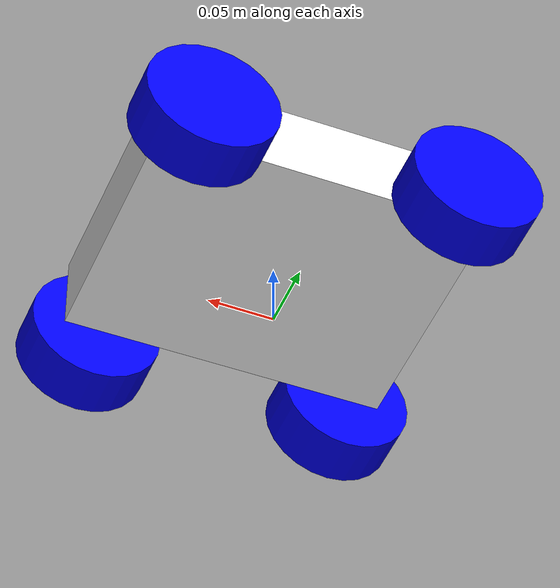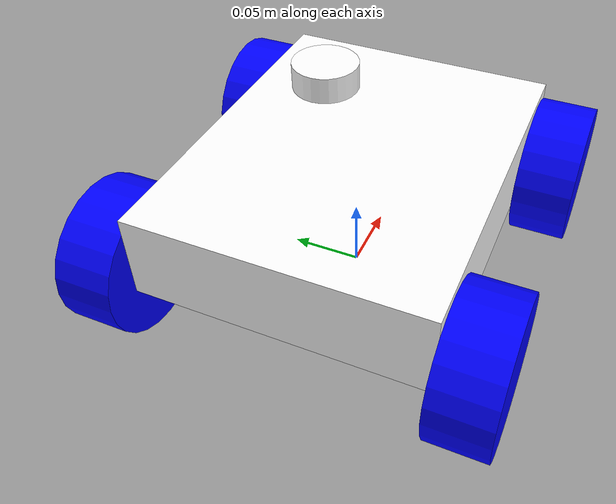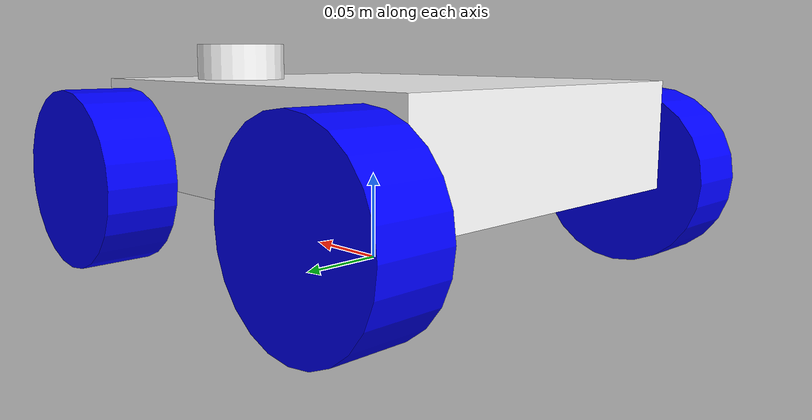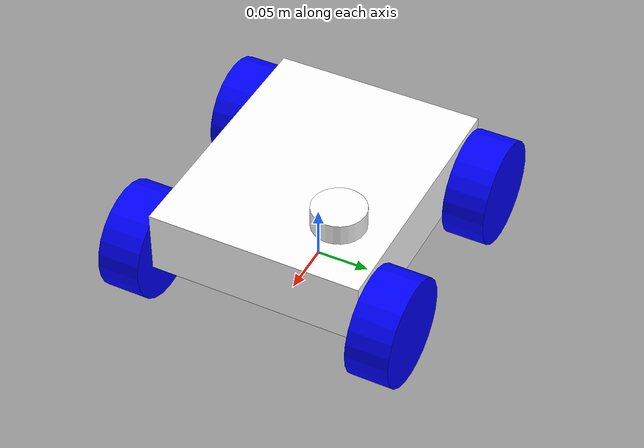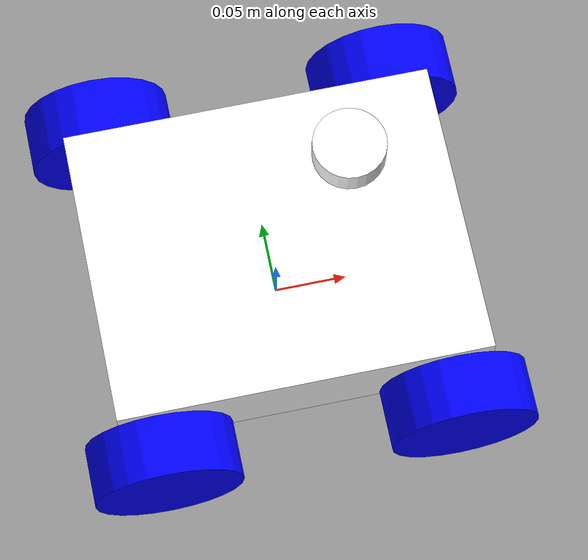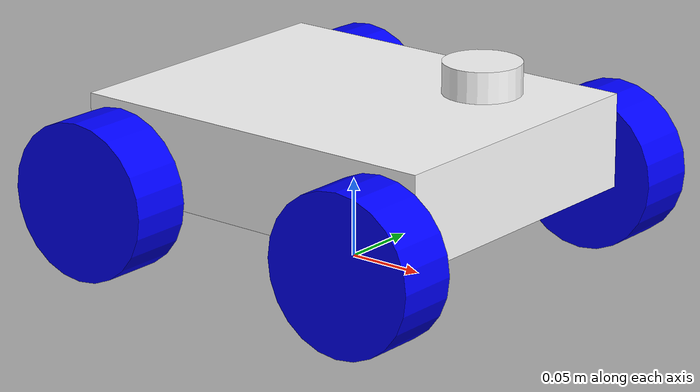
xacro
<?xml version="1.0"?>
<robot xmlns:xacro="http://www.ros.org/wiki/xacro" >
    <xacro:include filename="inertial_macros.xacro"/>

    <material name="white">
        <color rgba ="1 1 1 1"/>
    </material>

    <material name="blue">
        <color rgba ="0 0 1 1"/>
    </material>

    <link name="base_link">
    </link>

    <joint name="chassis_joint" type="fixed">
        <parent link="base_link"/>
        <child link="chassis"/>
        <origin xyz="0 0 0.075"/>
    </joint>

    <link name="chassis">
        <visual>
            <geometry>
                <box size="0.25 0.20 0.06"/>
            </geometry>
            <material name="white"/>
            <origin xyz="0 0 0"/>
        </visual>
        <visual>
            <geometry>
                <cylinder radius="0.025" length="0.02"/>
            </geometry>
            <material name="white"/>
            <origin xyz="0.06 0.05 0.04"/>
        </visual>
        <collision>
            <geometry>
                <box size="0.25 0.20 0.06"/>
            </geometry>

            <origin xyz="0 0 0"/>
        </collision>
        <collision>
            <geometry>
                <cylinder radius="0.025" length="0.02"/>
            </geometry>
            <origin xyz="0.06 0.05 0.04"/>
        </collision>
        <xacro:inertial_box mass="0.5" x="0" y="0" z="0">
            <origin xyz = "0 0 0" rpy="0 0 0"/>
        </xacro:inertial_box>
    </link>
    <!--0.0508 was the z value before for visual & collision (for ref)-->
    <gazebo reference="chassis">
        <material> Gazebo/White</material>
    </gazebo>

    <!-- wheel links-->
    <!-- LF-->
    <joint name="LF_wheel_joint" type="continuous">
        <parent link="chassis"/>
        <child link="LF_wheel"/>
        <origin xyz="0.1 0.12 -0.025" rpy="-${pi/2} 0 0"/>
        <axis xyz="0 0 1"/>
    </joint>

    <link name="LF_wheel">
        <visual>
            <geometry>
                <cylinder radius="0.05" length="0.04"/>
            </geometry>
            <material name="blue"/>
        </visual>
        <collision>
            <geometry>
                <sphere radius="0.05"/>
            </geometry>
        </collision>
        <xacro:inertial_cylinder mass="0.1" length="0.04" radius="0.05">
            <origin xyz = "0 0 0" rpy="0 0 0"/>
        </xacro:inertial_cylinder>

    </link>
    <gazebo reference="LF_wheel">
        <material> Gazebo/Blue</material>
    </gazebo>
    <!-- LB-->
    <joint name="LB_wheel_joint" type="continuous">
        <parent link="chassis"/>
        <child link="LB_wheel"/>
        <origin xyz="-0.1 0.12 -0.025" rpy="-${pi/2} 0 0"/>
        <axis xyz="0 0 1"/>
    </joint>

    <link name="LB_wheel">
        <visual>
            <geometry>
                <cylinder radius="0.05" length="0.04"/>
            </geometry>
            <material name="blue"/>
        </visual>
        <collision>
            <geometry>
                <sphere radius="0.05"/>
            </geometry>
        </collision>
        <xacro:inertial_cylinder mass="0.1" length="0.04" radius="0.05">
            <origin xyz = "0 0 0" rpy="0 0 0"/>
        </xacro:inertial_cylinder>
    </link>
    <gazebo reference="LB_wheel">
        <material> Gazebo/Blue</material>
    </gazebo>

    <!-- RF-->
    <joint name="RF_wheel_joint" type="continuous">
        <parent link="chassis"/>
        <child link="RF_wheel"/>
        <origin xyz="0.1 -0.12 -0.025" rpy="${pi/2} 0 0"/>
        <axis xyz="0 0 -1"/>
    </joint>

    <link name="RF_wheel">
        <visual>
            <geometry>
                <cylinder radius="0.05" length="0.04"/>
            </geometry>
            <material name="blue"/>
        </visual>
        <collision>
            <geometry>
                <sphere radius="0.05"/>
            </geometry>
        </collision>
        <xacro:inertial_cylinder mass="0.1" length="0.04" radius="0.05">
            <origin xyz = "0 0 0" rpy="0 0 0"/>
        </xacro:inertial_cylinder>
    </link>
    <gazebo reference="RF_wheel">
        <material> Gazebo/Blue</material>
    </gazebo>

    <!-- RB-->
    <joint name="RB_wheel_joint" type="continuous">
        <parent link="chassis"/>
        <child link="RB_wheel"/>
        <origin xyz="-0.1 -0.12 -0.025" rpy="${pi/2} 0 0"/>
        <axis xyz="0 0 -1"/>
    </joint>

    <link name="RB_wheel">
        <visual>
            <geometry>
                <cylinder radius="0.05" length="0.04"/>
            </geometry>
            <material name="blue"/>
        </visual>
        <collision>
            <geometry>
                <sphere radius="0.05"/>
            </geometry>
        </collision>
        <xacro:inertial_cylinder mass="0.1" length="0.04" radius="0.05">
            <origin xyz = "0 0 0" rpy="0 0 0"/>
        </xacro:inertial_cylinder>
    </link>
    <gazebo reference="RB_wheel">
        <material> Gazebo/Blue</material>
    </gazebo>

</robot>
